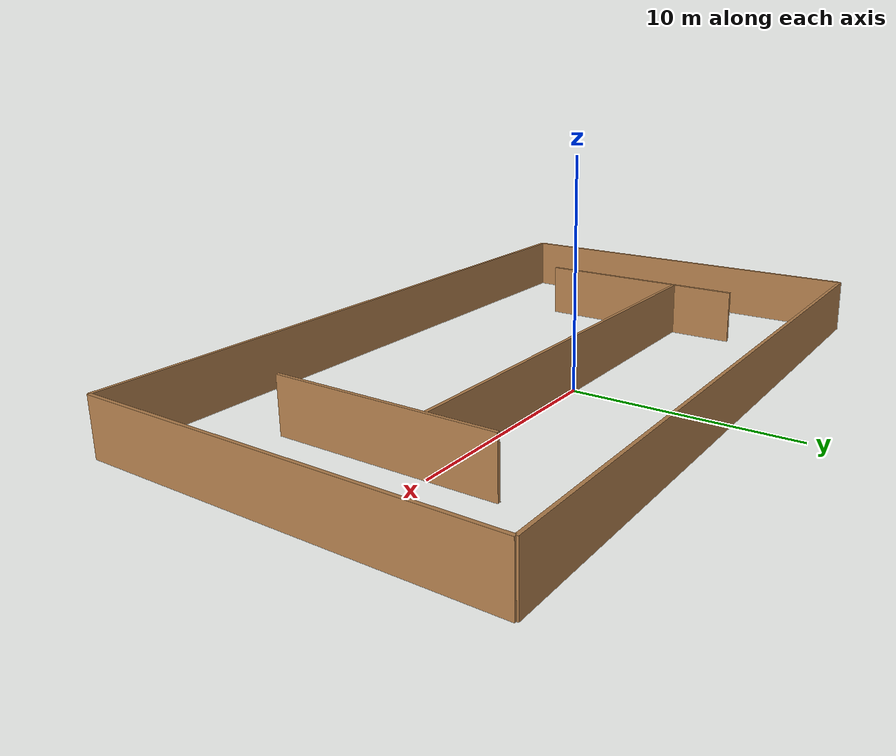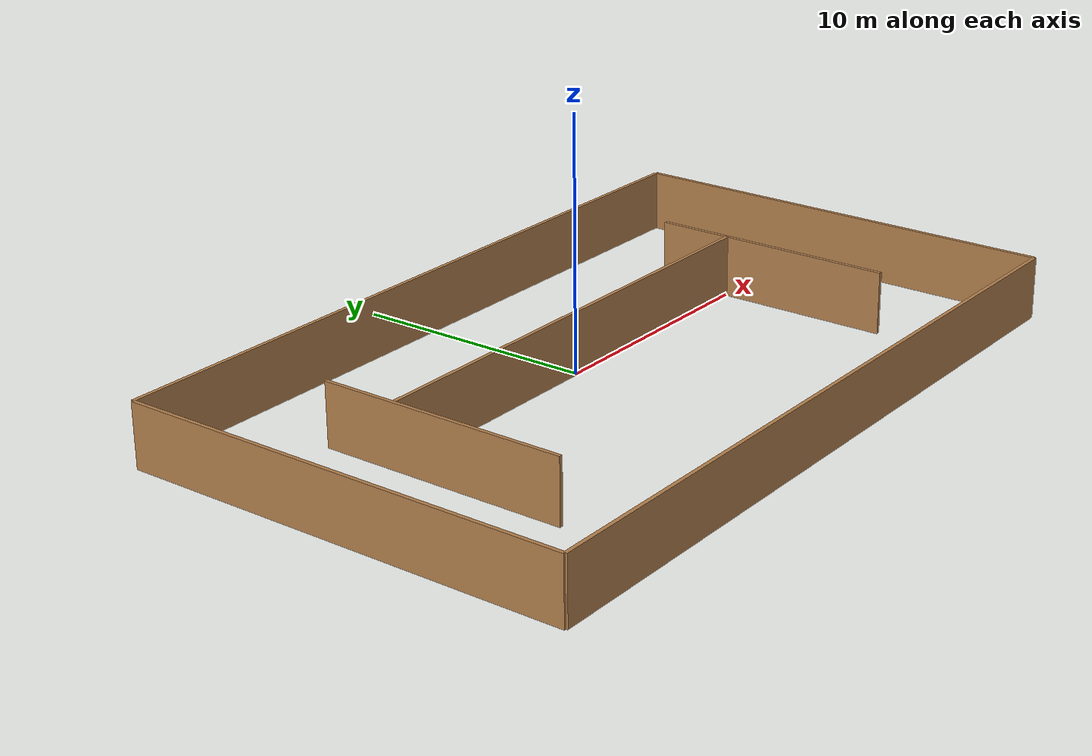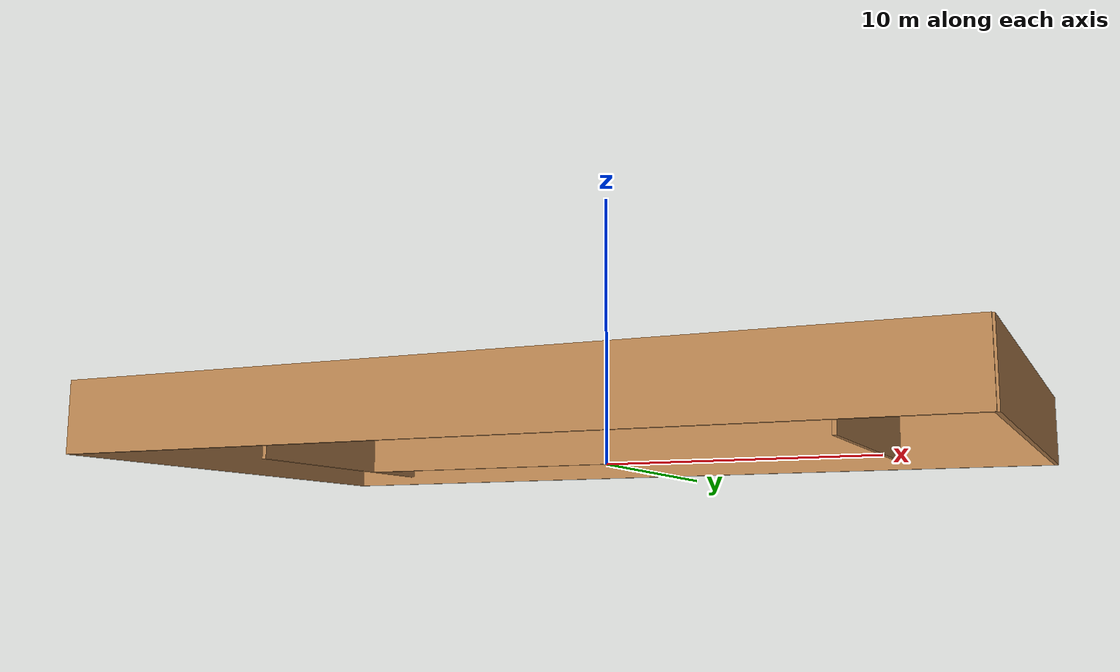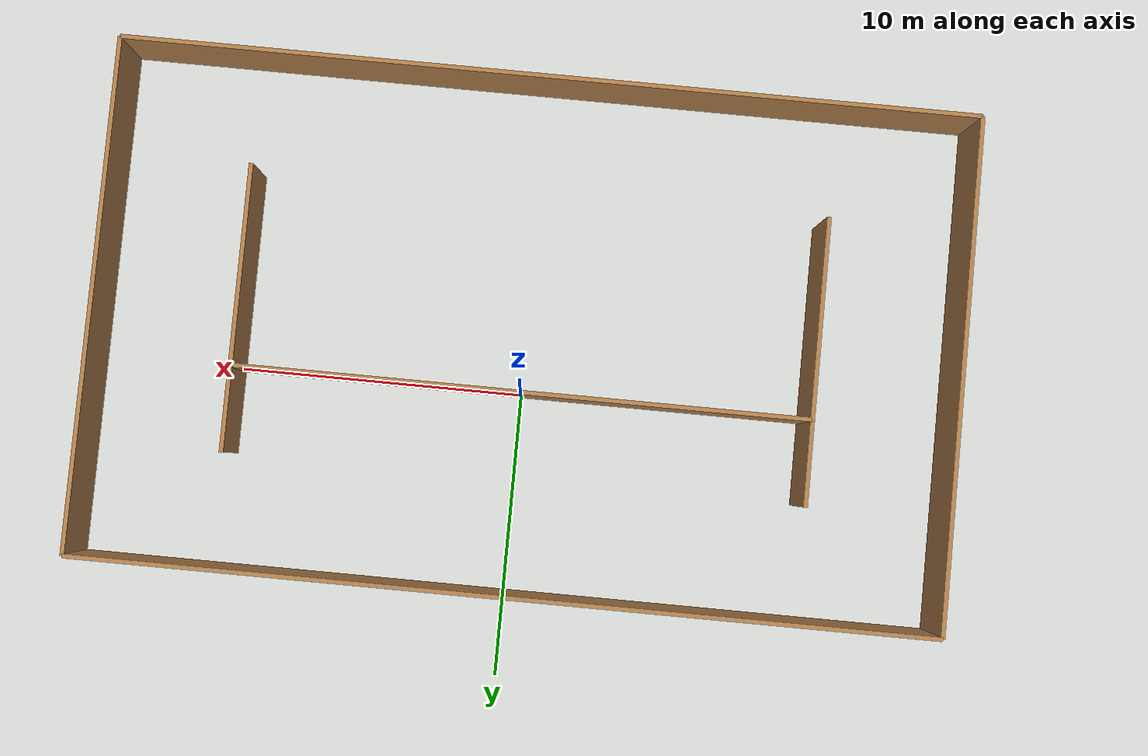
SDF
<?xml version='1.0'?>
<sdf version='1.6'>
  <model name='Challenge1Walls'>
    <pose frame=''>-0 0 0 0 -0 0</pose>
    <link name='Wall_13'>
      <collision name='Wall_13_Collision'>
        <geometry>
          <box>
            <size>20 0.15 2.5</size>
          </box>
        </geometry>
        <pose frame=''>0 0 1.25 0 -0 0</pose>
      </collision>
      <visual name='Wall_13_Visual'>
        <pose frame=''>0 0 1.25 0 -0 0</pose>
        <geometry>
          <box>
            <size>20 0.15 2.5</size>
          </box>
        </geometry>
        <material>
          <script>
            <uri>file://media/materials/scripts/gazebo.material</uri>
            <name>Gazebo/Wood</name>
          </script>
          <ambient>1 1 1 1</ambient>
        </material>
      </visual>
      <pose frame=''>0 0 0 0 -0 0</pose>
    </link>
    <link name='Wall_15'>
      <collision name='Wall_15_Collision'>
        <geometry>
          <box>
            <size>10 0.15 2.5</size>
          </box>
        </geometry>
        <pose frame=''>0 0 1.25 0 -0 0</pose>
      </collision>
      <visual name='Wall_15_Visual'>
        <pose frame=''>0 0 1.25 0 -0 0</pose>
        <geometry>
          <box>
            <size>10 0.15 2.5</size>
          </box>
        </geometry>
        <material>
          <script>
            <uri>file://media/materials/scripts/gazebo.material</uri>
            <name>Gazebo/Wood</name>
          </script>
          <ambient>1 1 1 1</ambient>
        </material>
      </visual>
      <pose frame=''>-10 -2 0 0 0 -1.5708</pose>
    </link>
    <link name='Wall_2'>
      <collision name='Wall_2_Collision'>
        <geometry>
          <box>
            <size>30 0.15 2.5</size>
          </box>
        </geometry>
        <pose frame=''>0 0 1.25 0 -0 0</pose>
      </collision>
      <visual name='Wall_2_Visual'>
        <pose frame=''>0 0 1.25 0 -0 0</pose>
        <geometry>
          <box>
            <size>30 0.15 2.5</size>
          </box>
        </geometry>
        <material>
          <script>
            <uri>file://media/materials/scripts/gazebo.material</uri>
            <name>Gazebo/Wood</name>
          </script>
          <ambient>1 1 1 1</ambient>
        </material>
      </visual>
      <pose frame=''>0 -11 0 0 -0 0</pose>
    </link>
    <link name='Wall_20'>
      <collision name='Wall_20_Collision'>
        <geometry>
          <box>
            <size>10 0.15 2.5</size>
          </box>
        </geometry>
        <pose frame=''>0 0 1.25 0 -0 0</pose>
      </collision>
      <visual name='Wall_20_Visual'>
        <pose frame=''>0 0 1.25 0 -0 0</pose>
        <geometry>
          <box>
            <size>10 0.15 2.5</size>
          </box>
        </geometry>
        <material>
          <script>
            <uri>file://media/materials/scripts/gazebo.material</uri>
            <name>Gazebo/Wood</name>
          </script>
          <ambient>1 1 1 1</ambient>
        </material>
      </visual>
      <pose frame=''>10 -2 0 0 0 -1.56904</pose>
    </link>
    <link name='Wall_3'>
      <collision name='Wall_3_Collision'>
        <geometry>
          <box>
            <size>18 0.15 2.5</size>
          </box>
        </geometry>
        <pose frame=''>0 0 1.25 0 -0 0</pose>
      </collision>
      <visual name='Wall_3_Visual'>
        <pose frame=''>0 0 1.25 0 -0 0</pose>
        <geometry>
          <box>
            <size>18 0.15 2.5</size>
          </box>
        </geometry>
        <material>
          <script>
            <uri>file://media/materials/scripts/gazebo.material</uri>
            <name>Gazebo/Wood</name>
          </script>
          <ambient>1 1 1 1</ambient>
        </material>
      </visual>
      <pose frame=''>15 -2 0 0 -0 1.5708</pose>
    </link>
    <link name='Wall_4'>
      <collision name='Wall_4_Collision'>
        <geometry>
          <box>
            <size>30 0.15 2.5</size>
          </box>
        </geometry>
        <pose frame=''>0 0 1.25 0 -0 0</pose>
      </collision>
      <visual name='Wall_4_Visual'>
        <pose frame=''>0 0 1.25 0 -0 0</pose>
        <geometry>
          <box>
            <size>30 0.15 2.5</size>
          </box>
        </geometry>
        <material>
          <script>
            <uri>file://media/materials/scripts/gazebo.material</uri>
            <name>Gazebo/Wood</name>
          </script>
          <ambient>1 1 1 1</ambient>
        </material>
      </visual>
      <pose frame=''>0 7 0 0 -0 3.14159</pose>
    </link>
    <link name='Wall_5'>
      <collision name='Wall_5_Collision'>
        <geometry>
          <box>
            <size>18 0.15 2.5</size>
          </box>
        </geometry>
        <pose frame=''>0 0 1.25 0 -0 0</pose>
      </collision>
      <visual name='Wall_5_Visual'>
        <pose frame=''>0 0 1.25 0 -0 0</pose>
        <geometry>
          <box>
            <size>18 0.15 2.5</size>
          </box>
        </geometry>
        <material>
          <script>
            <uri>file://media/materials/scripts/gazebo.material</uri>
            <name>Gazebo/Wood</name>
          </script>
          <ambient>1 1 1 1</ambient>
        </material>
      </visual>
      <pose frame=''>-15 -2 0 0 0 -1.5708</pose>
    </link>
    <static>1</static>
  </model>
</sdf>
